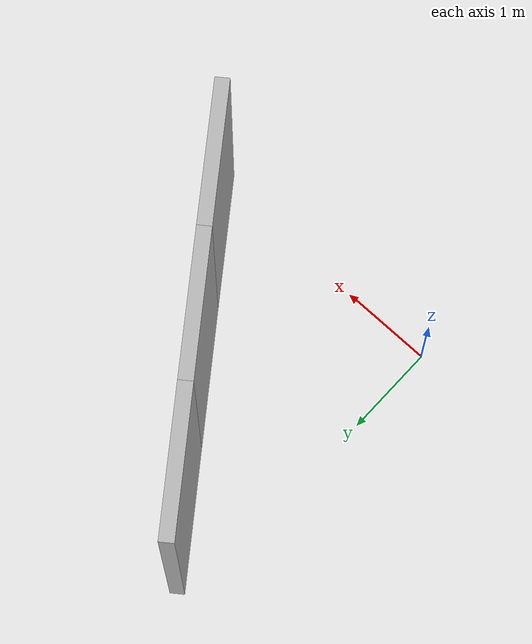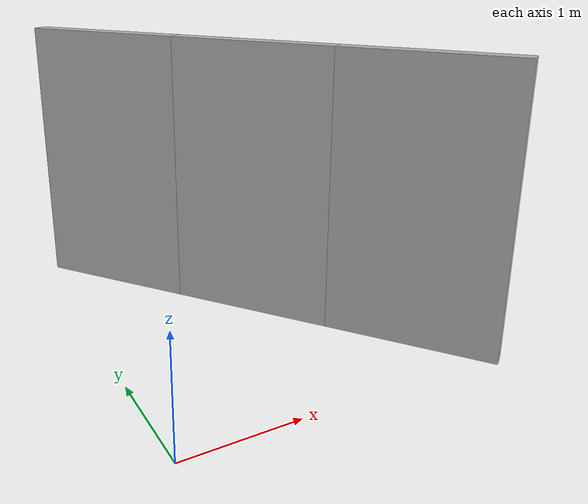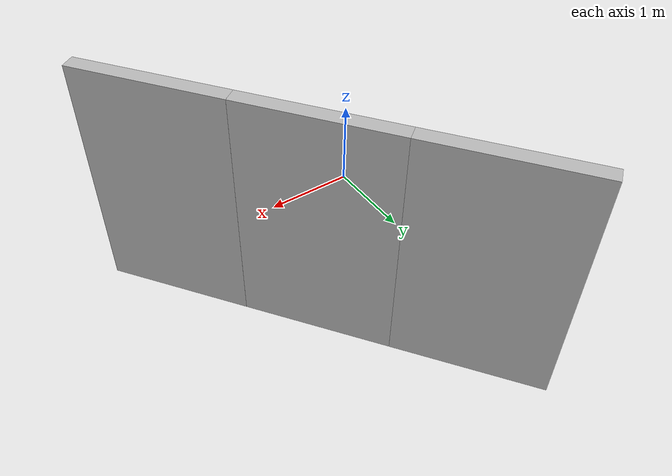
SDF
<?xml version="1.0" ?>
<sdf version="1.6">
  <model name="sps_4239">
    <pose frame="">0 0 0 0 -0 0</pose>
    <static>1</static>
    <self_collide>0</self_collide>
    <allow_auto_disable>0</allow_auto_disable>
    <link name="Wall10921">
      <kinematic>0</kinematic>
      <gravity>1</gravity>
      <self_collide>0</self_collide>
      <collision name="collision">
        <geometry>
          <box>
            <size>1.50327 0.15 2.5</size>
          </box>
        </geometry>
        <pose frame="">0 0 0 0 -0 0</pose>
      </collision>
      <visual name="visual">
        <geometry>
          <box>
            <size>1.50327 0.15 2.5</size>
          </box>
        </geometry>
        <pose frame="">0 0 0 0 -0 0</pose>
        <cast_shadows>1</cast_shadows>
        <transparency>0.0</transparency>
      </visual>
      <pose frame="">2.40295 0.489699 1.25 0 -0 2.20788</pose>
    </link>
    <link name="Wall10922">
      <kinematic>0</kinematic>
      <gravity>1</gravity>
      <self_collide>0</self_collide>
      <collision name="collision">
        <geometry>
          <box>
            <size>1.50304 0.15 2.5</size>
          </box>
        </geometry>
        <pose frame="">0 0 0 0 -0 0</pose>
      </collision>
      <visual name="visual">
        <geometry>
          <box>
            <size>1.50304 0.15 2.5</size>
          </box>
        </geometry>
        <pose frame="">0 0 0 0 -0 0</pose>
        <cast_shadows>1</cast_shadows>
        <transparency>0.0</transparency>
      </visual>
      <pose frame="">1.50783 1.69728 1.25 0 -0 2.20946</pose>
    </link>
    <link name="Wall10923">
      <kinematic>0</kinematic>
      <gravity>1</gravity>
      <self_collide>0</self_collide>
      <collision name="collision">
        <geometry>
          <box>
            <size>1.50302 0.15 2.5</size>
          </box>
        </geometry>
        <pose frame="">0 0 0 0 -0 0</pose>
      </collision>
      <visual name="visual">
        <geometry>
          <box>
            <size>1.50302 0.15 2.5</size>
          </box>
        </geometry>
        <pose frame="">0 0 0 0 -0 0</pose>
        <cast_shadows>1</cast_shadows>
        <transparency>0.0</transparency>
      </visual>
      <pose frame="">0.610954 2.9034 1.25 0 -0 2.21094</pose>
    </link>
  </model>
</sdf>
